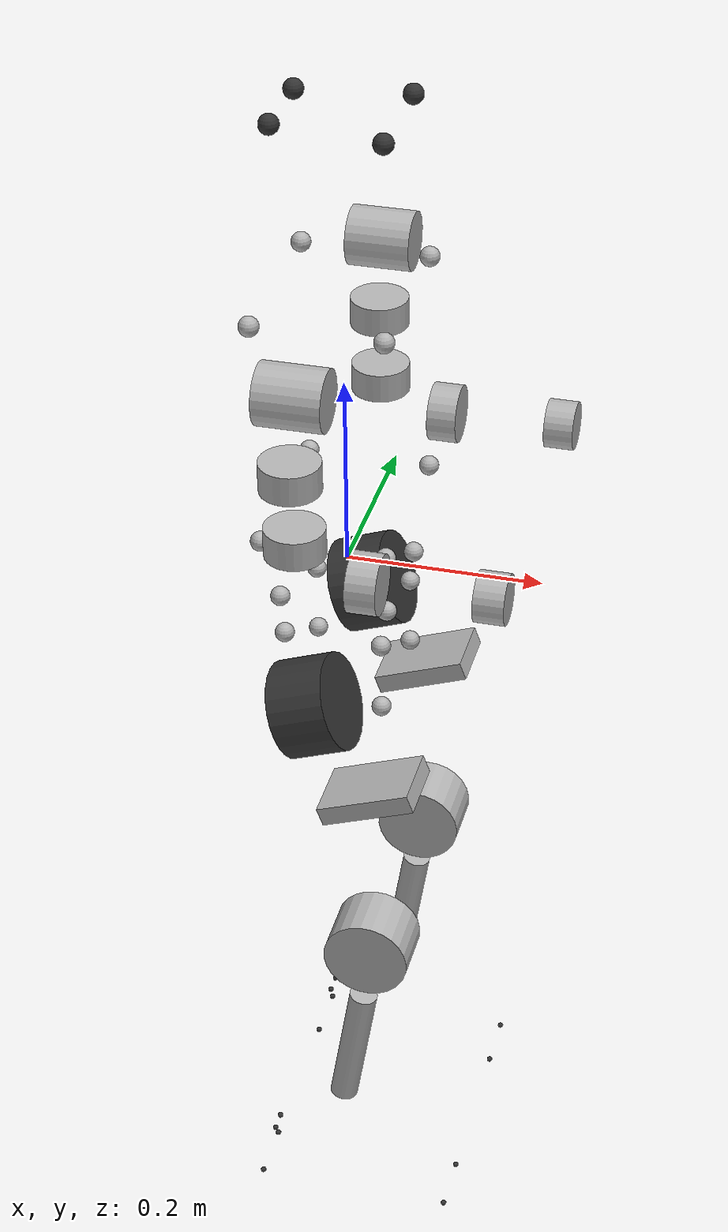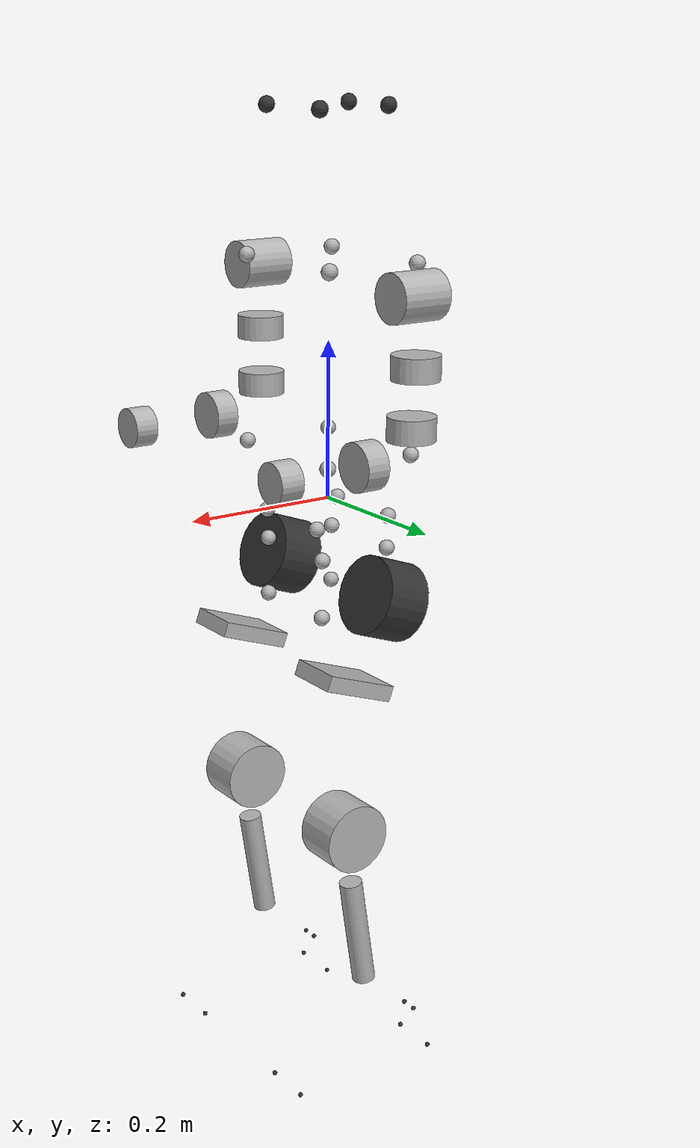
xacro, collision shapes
<?xml version="1.0"?>

<robot name="g1_description" xmlns:xacro="http://www.ros.org/wiki/xacro">

  <xacro:arg name="DEBUG" default="false"/>

  <xacro:include filename="$(find g1_description)/xacro/gazebo.xacro"/>
  <xacro:include filename="$(find g1_description)/xacro/const.xacro"/>
  <xacro:include filename="$(find g1_description)/xacro/leg.xacro"/>
  <xacro:include filename="$(find g1_description)/xacro/arm.xacro"/>
  <!-- Rotor related joint and link is only for demonstrate location. -->
  <!-- Actually, the rotor will rotate and the joint is not fixed. Reduction ratio should be considered. -->

  <!-- Debug mode will hung up the robot, use "true" or "false" to switch it. -->
  <xacro:if value="$(arg DEBUG)">
      <link name="world"/>
      <joint name="base_static_joint" type="fixed">
          <origin rpy="0 0 0" xyz="0 0 0.5"/>
          <parent link="world"/>
          <child link="pelvis"/>
      </joint>
  </xacro:if>

 <!-- Torso -->
  <link name="torso_link">
    <inertial>
      <origin xyz="${torso_link_com_x} ${torso_link_com_y} ${torso_link_com_z}" rpy="0 0 0"/>
      <mass value="${torso_link_mass}"/>
      <inertia
        ixx="${torso_link_ixx}" ixy="${torso_link_ixy}" ixz="${torso_link_ixz}"
        iyy="${torso_link_iyy}" iyz="${torso_link_iyz}"
        izz="${torso_link_izz}"/>
    </inertial>
    <visual>
      <origin xyz="0 0 0" rpy="0 0 0"/>
      <geometry>
        <mesh filename="package://g1_description/meshes/torso_link.STL"/>
      </geometry>
      <material name="">
        <color rgba="0.7 0.7 0.7 1"/>
      </material>
    </visual>
    <collision>
        <origin xyz="0.055 0.055 -0.020" rpy="0 0 0"/>
        <geometry>
        <sphere radius="0.01"/>
        </geometry>
    </collision>
    <collision>
        <origin xyz="0.055 -0.055 -0.020" rpy="0 0 0"/>
        <geometry>
        <sphere radius="0.01"/>
        </geometry>
    </collision>
    <collision>
        <origin xyz="-0.055 0.055 -0.020" rpy="0 0 0"/>
        <geometry>
        <sphere radius="0.01"/>
        </geometry>
    </collision>
    <collision>
        <origin xyz="-0.055 -0.055 -0.020" rpy="0 0 0"/>
        <geometry>
        <sphere radius="0.01"/>
        </geometry>
    </collision>

    <collision>
        <origin xyz="0.063 0.088 0.065" rpy="0 0 0"/>
        <geometry>
        <sphere radius="0.01"/>
        </geometry>
    </collision>
    <collision>
        <origin xyz="0.063 -0.088 0.065" rpy="0 0 0"/>
        <geometry>
        <sphere radius="0.01"/>
        </geometry>
    </collision>
    <collision>
        <origin xyz="-0.063 0.088 0.065" rpy="0 0 0"/>
        <geometry>
        <sphere radius="0.01"/>
        </geometry>
    </collision>
    <collision>
        <origin xyz="-0.063 -0.088 0.065" rpy="0 0 0"/>
        <geometry>
        <sphere radius="0.01"/>
        </geometry>
    </collision>

    <collision>
        <origin xyz="0.063 0.088 0.30" rpy="0 0 0"/>
        <geometry>
        <sphere radius="0.01"/>
        </geometry>
    </collision>
    <collision>
        <origin xyz="0.063 -0.088 0.30" rpy="0 0 0"/>
        <geometry>
        <sphere radius="0.01"/>
        </geometry>
    </collision>
    <collision>
        <origin xyz="-0.066 0.088 0.30" rpy="0 0 0"/>
        <geometry>
        <sphere radius="0.01"/>
        </geometry>
    </collision>
    <collision>
        <origin xyz="-0.066 -0.088 0.30" rpy="0 0 0"/>
        <geometry>
        <sphere radius="0.01"/>
        </geometry>
    </collision>
  </link>

  <joint name="torso_joint" type="revolute">
    <origin xyz="${torso_joint_offset_x} ${torso_joint_offset_y} ${torso_joint_offset_z}" rpy="0 0 0"/>
    <parent link="pelvis"/>
    <child link="torso_link"/>
    <axis xyz="0 0 1"/>
    <limit lower="${torso_joint_position_min}" upper="${torso_joint_position_max}" effort="${torso_joint_torque_max}" velocity="${torso_joint_velocity_max}"/>
  </joint>

  <link name="pelvis">
    <inertial>
      <origin xyz="0 0 -0.07605" rpy="0 0 0"/>
      <mass value="2.86"/>
      <inertia ixx="0.0079143" ixy="0" ixz="1.6E-06" iyy="0.0069837" iyz="0" izz="0.0059404"/>
    </inertial>
    <visual>
      <origin xyz="0 0 0" rpy="0 0 0"/>
      <geometry>
        <mesh filename="package://g1_description/meshes/pelvis.STL"/>
      </geometry>
      <material name="">
        <color rgba="0.7 0.7 0.7 1"/>
      </material>
    </visual>
    <collision>
        <origin xyz="0.050 0.060 -0.060" rpy="0 0 0"/>
        <geometry>
        <sphere radius="0.01"/>
        </geometry>
    </collision>
    <collision>
        <origin xyz="0.050 -0.060 -0.060" rpy="0 0 0"/>
        <geometry>
        <sphere radius="0.01"/>
        </geometry>
    </collision>
    <collision>
        <origin xyz="-0.050 0.060 -0.060" rpy="0 0 0"/>
        <geometry>
        <sphere radius="0.01"/>
        </geometry>
    </collision>
    <collision>
        <origin xyz="-0.050 -0.060 -0.060" rpy="0 0 0"/>
        <geometry>
        <sphere radius="0.01"/>
        </geometry>
    </collision>

    <collision>
        <origin xyz="0.050 0.060 -0.135" rpy="0 0 0"/>
        <geometry>
        <sphere radius="0.01"/>
        </geometry>
    </collision>
    <collision>
        <origin xyz="0.050 -0.060 -0.135" rpy="0 0 0"/>
        <geometry>
        <sphere radius="0.01"/>
        </geometry>
    </collision>
    <collision>
        <origin xyz="-0.050 0.060 -0.135" rpy="0 0 0"/>
        <geometry>
        <sphere radius="0.01"/>
        </geometry>
    </collision>
    <collision>
        <origin xyz="-0.050 -0.060 -0.135" rpy="0 0 0"/>
        <geometry>
        <sphere radius="0.01"/>
        </geometry>
    </collision>
  </link>
  <link name="pelvis_contour_link">
    <visual>
      <origin xyz="0 0 0" rpy="0 0 0"/>
      <geometry>
        <mesh filename="package://g1_description/meshes/pelvis_contour_link.STL"/>
      </geometry>
      <material name="">
        <color rgba="0.2 0.2 0.2 1"/>
      </material>
    </visual>
  </link>
  <joint name="pelvis_contour_joint" type="fixed">
    <parent link="pelvis"/>
    <child link="pelvis_contour_link"/>
  </joint>

 <!-- Head -->
  <link name="head_link">
    <inertial>
      <origin xyz="0.00138066852 0.00028430950 0.42034187824" rpy="0 0 0"/>
      <mass value="1.17976522"/>
      <inertia ixx="0.00543236042361" ixy="0.00000140137425" ixz="0.00034554752228" iyy="0.00552885306699" iyz="0.00001501216392" izz="0.00165378108136"/>
    </inertial>
    <visual>
      <origin xyz="0 0 0" rpy="0 0 0"/>
      <geometry>
        <mesh filename="package://g1_description/meshes/head_link.STL"/>
      </geometry>
      <material name="">
        <color rgba="0.2 0.2 0.2 1"/>
      </material>
    </visual>
    <collision>
      <origin xyz="0.055 0.055 0.48" rpy="0 0 0"/>
      <geometry>
      <sphere radius="0.01"/>
      </geometry>
    </collision>
    <collision>
      <origin xyz="0.055 -0.055 0.48" rpy="0 0 0"/>
      <geometry>
      <sphere radius="0.01"/>
      </geometry>
    </collision>
    <collision>
      <origin xyz="-0.055 0.040 0.48" rpy="0 0 0"/>
      <geometry>
      <sphere radius="0.01"/>
      </geometry>
    </collision>
    <collision>
      <origin xyz="-0.055 -0.040 0.48" rpy="0 0 0"/>
      <geometry>
      <sphere radius="0.01"/>
      </geometry>
    </collision>
  </link>

  <joint name="head_joint" type="fixed">
    <origin xyz="0 0 0" rpy="0 0 0"/>
    <parent link="torso_link"/>
    <child link="head_link"/>
  </joint>

  <!-- IMU -->
  <link name="imu_link"></link>

  <joint name="imu_joint" type="fixed">
    <origin xyz="-0.04233868314 0.00166 0.152067" rpy="0 0 0"/>
    <parent link="torso_link"/>
    <child link="imu_link"/>
  </joint>

  <xacro:leg name="left" mirror="1"/>
  <xacro:leg name="right" mirror="-1"/>
  <xacro:arm name="left" mirror="1"/>
  <xacro:arm name="right" mirror="-1"/>

  <transmission name="torso_tran">
    <type>transmission_interface/SimpleTransmission</type>
    <joint name="torso_joint">
      <hardwareInterface>hardware_interface/EffortJointInterface</hardwareInterface>
    </joint>
    <actuator name="torso_motor">
      <hardwareInterface>hardware_interface/EffortJointInterface</hardwareInterface>
      <mechanicalReduction>1</mechanicalReduction>
    </actuator>
  </transmission>

</robot>

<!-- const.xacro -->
<robot xmlns:xacro="http://www.ros.org/wiki/xacro">

    <!-- Constants for robot dimensions -->
    <xacro:property name="PI" value="3.1415926535897931"/>
    <xacro:property name="stick_mass" value="0.00001"/>

    <!-- dynamics inertial value-->
    <!-- All the value listed here is based on the left side, and the right side only differs in certain aspects. You can check these based on the g1.urdf file.-->
    <!-- torso_link -->
        <!-- joint -->
        <xacro:property name="torso_joint_offset_x" value="0.0"/>
        <xacro:property name="torso_joint_offset_y" value="0.0"/>
        <xacro:property name="torso_joint_offset_z" value="0.0"/>
        <!-- joint limits -->
        <xacro:property name="torso_joint_position_min" value="-2.618"/>
        <xacro:property name="torso_joint_position_max" value="2.618"/>
        <xacro:property name="torso_joint_torque_max" value="88"/>
        <xacro:property name="torso_joint_velocity_max" value="32"/>
        <!-- link -->
        <xacro:property name="torso_link_com_x" value="0.00197122283"/>
        <xacro:property name="torso_link_com_y" value="0.00266902037"/>
        <xacro:property name="torso_link_com_z" value="0.16936510960"/>
        <xacro:property name="torso_link_mass" value="6.33959811"/>
        <xacro:property name="torso_link_ixx" value="0.06037082109027"/>
        <xacro:property name="torso_link_ixy" value="-0.00010168407055"/>
        <xacro:property name="torso_link_ixz" value="0.00069845018092"/>
        <xacro:property name="torso_link_iyy" value="0.04355153796551"/>
        <xacro:property name="torso_link_iyz" value="0.00034366422728"/>
        <xacro:property name="torso_link_izz" value="0.03339981866010"/>

    <!-- leg -->
        <!-- hip_pitch_link -->
        <!-- joint -->
        <xacro:property name="hip_pitch_joint_offset_x" value="0"/>
        <xacro:property name="hip_pitch_joint_offset_y" value="0.06445"/>
        <xacro:property name="hip_pitch_joint_offset_z" value="-0.1027"/>
        <xacro:property name="hip_pitch_joint_offset_pitch" value="-0.34907"/>
        <!-- joint limits -->
        <xacro:property name="hip_pitch_joint_position_min" value="-2.35"/>
        <xacro:property name="hip_pitch_joint_position_max" value="3.05"/>
        <xacro:property name="hip_pitch_joint_torque_max" value="88"/>
        <xacro:property name="hip_pitch_joint_velocity_max" value="32"/>
        <!-- link -->
        <xacro:property name="hip_pitch_link_com_x" value="0.001962"/>
        <xacro:property name="hip_pitch_link_com_y" value="0.049392"/>
        <xacro:property name="hip_pitch_link_com_z" value="-0.000941"/>
        <xacro:property name="hip_pitch_link_mass" value="1.299"/>
        <xacro:property name="hip_pitch_link_ixx" value="0.0013873"/>
        <xacro:property name="hip_pitch_link_ixy" value="-1.63E-05"/>
        <xacro:property name="hip_pitch_link_ixz" value="-1E-06"/>
        <xacro:property name="hip_pitch_link_iyy" value="0.0009059"/>
        <xacro:property name="hip_pitch_link_iyz" value="-4.24E-05"/>
        <xacro:property name="hip_pitch_link_izz" value="0.0009196"/>

        <!-- hip_roll_link -->
        <!-- joint -->
        <xacro:property name="hip_roll_joint_offset_x" value="0"/>
        <xacro:property name="hip_roll_joint_offset_y" value="0.0523"/>
        <xacro:property name="hip_roll_joint_offset_z" value="0"/>
        <!-- joint limits -->
        <xacro:property name="hip_roll_joint_position_min" value="-0.26"/>
        <xacro:property name="hip_roll_joint_position_max" value="2.53"/>
        <xacro:property name="hip_roll_joint_torque_max" value="88"/>
        <xacro:property name="hip_roll_joint_velocity_max" value="32"/>
        <!-- link -->
        <xacro:property name="hip_roll_link_com_x" value="0.024757"/>
        <xacro:property name="hip_roll_link_com_y" value="-0.001036"/>
        <xacro:property name="hip_roll_link_com_z" value="-0.086323"/>
        <xacro:property name="hip_roll_link_mass" value="1.446"/>
        <xacro:property name="hip_roll_link_ixx" value="0.0022702"/>
        <xacro:property name="hip_roll_link_ixy" value="-3.7E-06"/>
        <xacro:property name="hip_roll_link_ixz" value="-0.0003789"/>
        <xacro:property name="hip_roll_link_iyy" value="0.002304"/>
        <xacro:property name="hip_roll_link_iyz" value="-1.8E-05"/>
        <xacro:property name="hip_roll_link_izz" value="0.0016001"/>

        <!-- hip_yaw_link -->
        <!-- joint -->
        <xacro:property name="hip_yaw_joint_offset_x" value="0.01966"/>
        <xacro:property name="hip_yaw_joint_offset_y" value="-0.0012139"/>
        <xacro:property name="hip_yaw_joint_offset_z" value="-0.1241"/>
        <!-- joint limits -->
        <xacro:property name="hip_yaw_joint_position_min" value="-2.75"/>
        <xacro:property name="hip_yaw_joint_position_max" value="2.75"/>
        <xacro:property name="hip_yaw_joint_torque_max" value="88"/>
        <xacro:property name="hip_yaw_joint_velocity_max" value="32"/>
        <!-- link -->
        <xacro:property name="hip_yaw_link_com_x" value="-0.053554"/>
        <xacro:property name="hip_yaw_link_com_y" value="-0.011477"/>
        <xacro:property name="hip_yaw_link_com_z" value="-0.14067"/>
        <xacro:property name="hip_yaw_link_mass" value="2.052"/>
        <xacro:property name="hip_yaw_link_ixx" value="0.0087264"/>
        <xacro:property name="hip_yaw_link_ixy" value="-0.0004402"/>
        <xacro:property name="hip_yaw_link_ixz" value="-0.0036676"/>
        <xacro:property name="hip_yaw_link_iyy" value="0.011374"/>
        <xacro:property name="hip_yaw_link_iyz" value="-0.0006654"/>
        <xacro:property name="hip_yaw_link_izz" value="0.004279"/>

        <!-- knee_link -->
        <!-- joint -->
        <xacro:property name="knee_joint_offset_x" value="-0.078292"/>
        <xacro:property name="knee_joint_offset_y" value="-0.0017335"/>
        <xacro:property name="knee_joint_offset_z" value="-0.177225"/>
        <xacro:property name="knee_joint_offset_pitch" value="0.5096"/>
        <!-- joint limits -->
        <xacro:property name="knee_joint_position_min" value="-0.33489"/>
        <xacro:property name="knee_joint_position_max" value="2.5449"/>
        <xacro:property name="knee_joint_torque_max" value="139"/>
        <xacro:property name="knee_joint_velocity_max" value="20"/>
        <!-- link -->
        <xacro:property name="knee_link_com_x" value="0.005505"/>
        <xacro:property name="knee_link_com_y" value="0.006534"/>
        <xacro:property name="knee_link_com_z" value="-0.116629"/>
        <xacro:property name="knee_link_mass" value="2.252"/>
        <xacro:property name="knee_link_ixx" value="0.012443837"/>
        <xacro:property name="knee_link_ixy" value="0.000053496"/>
        <xacro:property name="knee_link_ixz" value="-0.000437641"/>
        <xacro:property name="knee_link_iyy" value="0.012674902"/>
        <xacro:property name="knee_link_iyz" value="-0.000682499"/>
        <xacro:property name="knee_link_izz" value="0.001986501"/>

        <!-- ankle_pitch_link -->
        <!-- joint -->
        <xacro:property name="ankle_pitch_joint_offset_x" value="0"/>
        <xacro:property name="ankle_pitch_joint_offset_y" value="0.0040687"/>
        <xacro:property name="ankle_pitch_joint_offset_z" value="-0.30007"/>
        <xacro:property name="ankle_pitch_joint_offset_pitch" value="-0.16053"/>
        <!-- joint limits -->
        <xacro:property name="ankle_pitch_joint_position_min" value="-0.68"/>
        <xacro:property name="ankle_pitch_joint_position_max" value="0.73"/>
        <xacro:property name="ankle_pitch_joint_torque_max" value="40"/>
        <xacro:property name="ankle_pitch_joint_velocity_max" value="53"/>
        <!-- link -->
        <xacro:property name="ankle_pitch_link_com_x" value="-0.007269"/>
        <xacro:property name="ankle_pitch_link_com_y" value="0"/>
        <xacro:property name="ankle_pitch_link_com_z" value="0.011137"/>
        <xacro:property name="ankle_pitch_link_mass" value="0.074"/>
        <xacro:property name="ankle_pitch_link_ixx" value="8.4E-06"/>
        <xacro:property name="ankle_pitch_link_ixy" value="0"/>
        <xacro:property name="ankle_pitch_link_ixz" value="-2.9E-06"/>
        <xacro:property name="ankle_pitch_link_iyy" value="1.89E-05"/>
        <xacro:property name="ankle_pitch_link_iyz" value="0"/>
        <xacro:property name="ankle_pitch_link_izz" value="1.26E-05"/>

        <!-- ankle_roll_link -->
        <!-- joint -->
        <xacro:property name="ankle_roll_joint_offset_x" value="0"/>
        <xacro:property name="ankle_roll_joint_offset_y" value="0"/>
        <xacro:property name="ankle_roll_joint_offset_z" value="-0.017558"/>
        <!-- joint limits -->
        <xacro:property name="ankle_roll_joint_position_max" value="0.2618"/>
        <xacro:property name="ankle_roll_joint_position_min" value="-0.2618"/>
        <xacro:property name="ankle_roll_joint_velocity_max" value="53"/>
        <xacro:property name="ankle_roll_joint_torque_max" value="40"/>
        <!-- link -->
        <xacro:property name="ankle_roll_link_com_x" value="0.024762"/>
        <xacro:property name="ankle_roll_link_com_y" value="2E-05"/>
        <xacro:property name="ankle_roll_link_com_z" value="-0.012526"/>
        <xacro:property name="ankle_roll_link_mass" value="0.391"/>
        <xacro:property name="ankle_roll_link_ixx" value="0.0001552"/>
        <xacro:property name="ankle_roll_link_ixy" value="-1E-07"/>
        <xacro:property name="ankle_roll_link_ixz" value="7.51E-05"/>
        <xacro:property name="ankle_roll_link_iyy" value="0.0010657"/>
        <xacro:property name="ankle_roll_link_iyz" value="1E-07"/>
        <xacro:property name="ankle_roll_link_izz" value="0.001098"/>

    <!-- arm -->
        <!-- shoulder_pitch_link -->
        <!-- joint -->
        <xacro:property name="shoulder_pitch_joint_offset_x" value="-0.0025"/>
        <xacro:property name="shoulder_pitch_joint_offset_y" value="0.10396"/>
        <xacro:property name="shoulder_pitch_joint_offset_z" value="0.25928"/>
        <xacro:property name="shoulder_pitch_joint_offset_roll" value="0.27925"/>
        <!-- joint limits -->
        <xacro:property name="shoulder_pitch_joint_position_min" value="-2.9671"/>
        <xacro:property name="shoulder_pitch_joint_position_max" value="2.7925"/>
        <xacro:property name="shoulder_pitch_joint_torque_max" value="21"/>
        <xacro:property name="shoulder_pitch_joint_velocity_max" value="53"/>
        <!-- link -->
        <xacro:property name="shoulder_pitch_link_com_x" value="-0.001431"/>
        <xacro:property name="shoulder_pitch_link_com_y" value="0.048811"/>
        <xacro:property name="shoulder_pitch_link_com_z" value="0.001304"/>
        <xacro:property name="shoulder_pitch_link_mass" value="0.713"/>
        <xacro:property name="shoulder_pitch_link_ixx" value="0.0004614"/>
        <xacro:property name="shoulder_pitch_link_ixy" value="-9.3E-06"/>
        <xacro:property name="shoulder_pitch_link_ixz" value="1E-05"/>
        <xacro:property name="shoulder_pitch_link_iyy" value="0.0004146"/>
        <xacro:property name="shoulder_pitch_link_iyz" value="5.5E-06"/>
        <xacro:property name="shoulder_pitch_link_izz" value="0.0004416"/>

        <!-- shoulder_roll_link -->
        <!-- joint -->
        <xacro:property name="shoulder_roll_joint_offset_x" value="0"/>
        <xacro:property name="shoulder_roll_joint_offset_y" value="0.052"/>
        <xacro:property name="shoulder_roll_joint_offset_z" value="0"/>
        <xacro:property name="shoulder_roll_joint_offset_roll" value="-0.27925"/>
        <!-- joint limits -->
        <xacro:property name="shoulder_roll_joint_position_min" value="-1.5882"/>
        <xacro:property name="shoulder_roll_joint_position_max" value="2.2515"/>
        <xacro:property name="shoulder_roll_joint_torque_max" value="21"/>
        <xacro:property name="shoulder_roll_joint_velocity_max" value="53"/>
        <!-- link -->
        <xacro:property name="shoulder_roll_link_com_x" value="-0.003415"/>
        <xacro:property name="shoulder_roll_link_com_y" value="0.006955"/>
        <xacro:property name="shoulder_roll_link_com_z" value="-0.064598"/>
        <xacro:property name="shoulder_roll_link_mass" value="0.642"/>
        <xacro:property name="shoulder_roll_link_ixx" value="0.0006159"/>
        <xacro:property name="shoulder_roll_link_ixy" value="0"/>
        <xacro:property name="shoulder_roll_link_ixz" value="-5.6E-06"/>
        <xacro:property name="shoulder_roll_link_iyy" value="0.0006835"/>
        <xacro:property name="shoulder_roll_link_iyz" value="2.1E-06"/>
        <xacro:property name="shoulder_roll_link_izz" value="0.000373"/>

        <!-- shoulder_yaw_link -->
        <!-- joint -->
        <xacro:property name="shoulder_yaw_joint_offset_x" value="-0.00354"/>
        <xacro:property name="shoulder_yaw_joint_offset_y" value="0.0062424"/>
        <xacro:property name="shoulder_yaw_joint_offset_z" value="-0.1032"/>
        <!-- joint limits -->
        <xacro:property name="shoulder_yaw_joint_position_min" value="-2.618"/>
        <xacro:property name="shoulder_yaw_joint_position_max" value="2.618"/>
        <xacro:property name="shoulder_yaw_joint_torque_max" value="21"/>
        <xacro:property name="shoulder_yaw_joint_velocity_max" value="53"/>
        <!-- link -->
        <xacro:property name="shoulder_yaw_link_com_x" value="0.000375"/>
        <xacro:property name="shoulder_yaw_link_com_y" value="-0.00444"/>
        <xacro:property name="shoulder_yaw_link_com_z" value="-0.072374"/>
        <xacro:property name="shoulder_yaw_link_mass" value="0.713"/>
        <xacro:property name="shoulder_yaw_link_ixx" value="0.0009699"/>
        <xacro:property name="shoulder_yaw_link_ixy" value="7.1E-06"/>
        <xacro:property name="shoulder_yaw_link_ixz" value="7.8E-06"/>
        <xacro:property name="shoulder_yaw_link_iyy" value="0.0009691"/>
        <xacro:property name="shoulder_yaw_link_iyz" value="-4.49E-05"/>
        <xacro:property name="shoulder_yaw_link_izz" value="0.0003826"/>

        <!-- elbow_pitch_link -->
        <!-- joint -->
        <xacro:property name="elbow_pitch_joint_offset_x" value="0"/>
        <xacro:property name="elbow_pitch_joint_offset_y" value="0.00189"/>
        <xacro:property name="elbow_pitch_joint_offset_z" value="-0.0855"/>
        <!-- joint limits -->
        <xacro:property name="elbow_pitch_joint_position_min" value="-0.2268"/>
        <xacro:property name="elbow_pitch_joint_position_max" value="3.4208"/>
        <xacro:property name="elbow_pitch_joint_torque_max" value="21"/>
        <xacro:property name="elbow_pitch_joint_velocity_max" value="53"/>
        <!-- link -->
        <xacro:property name="elbow_pitch_link_com_x" value="0.064497"/>
        <xacro:property name="elbow_pitch_link_com_y" value="0.002873"/>
        <xacro:property name="elbow_pitch_link_com_z" value="0"/>
        <xacro:property name="elbow_pitch_link_mass" value="0.601"/>
        <xacro:property name="elbow_pitch_link_ixx" value="0.0002845"/>
        <xacro:property name="elbow_pitch_link_ixy" value="8.06E-05"/>
        <xacro:property name="elbow_pitch_link_ixz" value="9E-09"/>
        <xacro:property name="elbow_pitch_link_iyy" value="0.0004647"/>
        <xacro:property name="elbow_pitch_link_iyz" value="5E-09"/>
        <xacro:property name="elbow_pitch_link_izz" value="0.0004712"/>

        <!-- elbow_roll_link -->
        <!-- joint -->
        <xacro:property name="elbow_roll_joint_offset_x" value="0.1"/>
        <xacro:property name="elbow_roll_joint_offset_y" value="0"/>
        <xacro:property name="elbow_roll_joint_offset_z" value="0"/>
        <!-- joint limits -->
        <xacro:property name="elbow_roll_joint_position_min" value="-2.0943"/>
        <xacro:property name="elbow_roll_joint_position_max" value="2.0943"/>
        <xacro:property name="elbow_roll_joint_torque_max" value="21"/>
        <xacro:property name="elbow_roll_joint_velocity_max" value="53"/>
        <!-- link -->
        <xacro:property name="elbow_roll_link_com_x" value="0.081811"/>
        <xacro:property name="elbow_roll_link_com_y" value="0.001454"/>
        <xacro:property name="elbow_roll_link_com_z" value="0.001"/>
        <xacro:property name="elbow_roll_link_mass" value="0.227"/>
        <xacro:property name="elbow_roll_link_ixx" value="0.0001093"/>
        <xacro:property name="elbow_roll_link_ixy" value="-1.55E-05"/>
        <xacro:property name="elbow_roll_link_ixz" value="-2.91E-05"/>
        <xacro:property name="elbow_roll_link_iyy" value="0.000977"/>
        <xacro:property name="elbow_roll_link_iyz" value="1E-06"/>
        <xacro:property name="elbow_roll_link_izz" value="0.0009676"/>

</robot>

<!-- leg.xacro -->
<robot xmlns:xacro="http://www.ros.org/wiki/xacro">

    <xacro:include filename="$(find g1_description)/xacro/leg_transmission.xacro"/>
    <xacro:macro name="leg" params="name mirror">

        <!-- checked -->
        <joint name="${name}_hip_pitch_joint" type="revolute">
            <origin xyz="${hip_pitch_joint_offset_x} ${mirror*hip_pitch_joint_offset_y} ${hip_pitch_joint_offset_z}" rpy="0 ${hip_pitch_joint_offset_pitch} 0"/>
            <parent link="pelvis"/>
            <child link="${name}_hip_pitch_link"/>
            <axis xyz="0 1 0"/>
            <limit lower="${hip_pitch_joint_position_min}" upper="${hip_pitch_joint_position_max}" effort="${hip_pitch_joint_torque_max}" velocity="${hip_pitch_joint_velocity_max}"/>
        </joint>

        <!-- Leg -->
        <link name="${name}_hip_pitch_link">
            <inertial>
                <origin xyz="${hip_pitch_link_com_x} ${mirror*hip_pitch_link_com_y} ${hip_pitch_link_com_z}" rpy="0 0 0"/>
                <mass value="${hip_pitch_link_mass}"/>
                <inertia
                    ixx="${hip_pitch_link_ixx}" ixy="${mirror*hip_pitch_link_ixy}" ixz="${hip_pitch_link_ixz}"
                    iyy="${hip_pitch_link_iyy}" iyz="${mirror*hip_pitch_link_iyz}"
                    izz="${hip_pitch_link_izz}"/>
            </inertial>
            <visual>
                <origin xyz="0 0 0" rpy="0 0 0"/>
                <geometry>
                    <mesh filename="package://g1_description/meshes/${name}_hip_pitch_link.STL"/>
                </geometry>
                <material name="">
                    <color rgba="0.2 0.2 0.2 1"/>
                </material>
            </visual>
            <collision>
                <origin xyz="-0.005 ${mirror*0.05} 0" rpy="0 1.5707 0"/>
                <geometry>
                    <cylinder radius="0.05" length="0.06"/>
                </geometry>
            </collision>
        </link>

        <joint name="${name}_hip_roll_joint" type="revolute">
            <origin xyz="${hip_roll_joint_offset_x} ${mirror*hip_roll_joint_offset_y} ${hip_roll_joint_offset_z}" rpy="0 0 0"/>
            <parent link="${name}_hip_pitch_link"/>
            <child link="${name}_hip_roll_link"/>
            <axis xyz="1 0 0"/>
            <xacro:if value="${mirror == 1}">
                <limit lower="${hip_roll_joint_position_min}" upper="${hip_roll_joint_position_max}" effort="${hip_roll_joint_torque_max}" velocity="${hip_roll_joint_velocity_max}"/>
            </xacro:if>
            <xacro:if value="${mirror == -1}">
                <limit lower="${mirror*hip_roll_joint_position_max}" upper="${mirror*hip_roll_joint_position_min}" effort="${hip_roll_joint_torque_max}" velocity="${hip_roll_joint_velocity_max}"/>
            </xacro:if>
        </joint>

        <link name="${name}_hip_roll_link">
            <inertial>
                <origin xyz="${hip_roll_link_com_x} ${mirror*hip_roll_link_com_y} ${hip_roll_link_com_z}" rpy="0 0 0"/>
                <mass value="${hip_roll_link_mass}"/>
                <inertia
                    ixx="${hip_roll_link_ixx}" ixy="${mirror*hip_roll_link_ixy}" ixz="${hip_roll_link_ixz}"
                    iyy="${hip_roll_link_iyy}" iyz="${mirror*hip_roll_link_iyz}"
                    izz="${hip_roll_link_izz}"/>
            </inertial>
            <visual>
                <origin xyz="0 0 0" rpy="0 0 0"/>
                <geometry>
                    <mesh filename="package://g1_description/meshes/${name}_hip_roll_link.STL"/>
                </geometry>
                <material name="">
                    <color rgba="0.7 0.7 0.7 1"/>
                </material>
            </visual>
            <collision>
                <origin xyz="0.019 -0.0 -0.11" rpy="0 0 0"/>
                <geometry>
                    <box size="0.1 0.070 0.02"/>
                </geometry>
            </collision>
        </link>

        <joint name="${name}_hip_yaw_joint" type="revolute">
            <origin xyz="${hip_yaw_joint_offset_x} ${mirror*hip_yaw_joint_offset_y} ${hip_yaw_joint_offset_z}" rpy="0 0 0"/>
            <parent link="${name}_hip_roll_link"/>
            <child link="${name}_hip_yaw_link"/>
            <axis xyz="0 0 1"/>
            <limit lower="${hip_yaw_joint_position_min}" upper="${hip_yaw_joint_position_max}" effort="${hip_yaw_joint_torque_max}" velocity="${hip_yaw_joint_velocity_max}"/>
        </joint>

        <link name="${name}_hip_yaw_link">
            <inertial>
                <origin xyz="${hip_yaw_link_com_x} ${mirror*hip_yaw_link_com_y} ${hip_yaw_link_com_z}" rpy="0 0 0"/>
                <mass value="${hip_yaw_link_mass}"/>
                <inertia
                    ixx="${hip_yaw_link_ixx}" ixy="${mirror*hip_yaw_link_ixy}" ixz="${hip_yaw_link_ixz}"
                    iyy="${hip_yaw_link_iyy}" iyz="${mirror*hip_yaw_link_iyz}"
                    izz="${hip_yaw_link_izz}"/>
            </inertial>
            <visual>
                <origin xyz="0 0 0" rpy="0 0 0"/>
                <geometry>
                    <mesh filename="package://g1_description/meshes/${name}_hip_yaw_link.STL"/>
                </geometry>
                <material name="">
                    <color rgba="0.7 0.7 0.7 1"/>
                </material>
            </visual>
            <collision>
                <origin xyz="-0.075 0 -0.18" rpy="1.5707 0 0"/>
                <geometry>
                    <cylinder radius="0.045" length="0.06"/>
                </geometry>
            </collision>
        </link>

        <joint name="${name}_knee_joint" type="revolute">
            <origin xyz="${knee_joint_offset_x} ${mirror*knee_joint_offset_y} ${knee_joint_offset_z}" rpy="0 ${knee_joint_offset_pitch} 0"/>
            <parent link="${name}_hip_yaw_link"/>
            <child link="${name}_knee_link"/>
            <axis xyz="0 1 0"/>
            <limit lower="${knee_joint_position_min}" upper="${knee_joint_position_max}" effort="${knee_joint_torque_max}" velocity="${knee_joint_velocity_max}"/>
        </joint>

        <link name="${name}_knee_link">
            <inertial>
                <origin xyz="${knee_link_com_x} ${mirror*knee_link_com_y} ${knee_link_com_z}" rpy="0 0 0"/>
                <mass value="${knee_link_mass}"/>
                <inertia
                    ixx="${knee_link_ixx}" ixy="${mirror*knee_link_ixy}" ixz="${knee_link_ixz}"
                    iyy="${knee_link_iyy}" iyz="${mirror*knee_link_iyz}"
                    izz="${knee_link_izz}"/>
            </inertial>
            <visual>
                <origin xyz="0 0 0" rpy="0 0 0"/>
                <geometry>
                    <mesh filename="package://g1_description/meshes/${name}_knee_link.STL"/>
                </geometry>
                <material name="">
                    <color rgba="0.7 0.7 0.7 1"/>
                </material>
            </visual>
            <collision>
                <origin xyz="0.007 ${mirror*0.005} -0.15" rpy="0 0 0"/>
                <geometry>
                    <cylinder radius="0.015" length="0.15"/>
                </geometry>
            </collision>
        </link>

        <joint name="${name}_ankle_pitch_joint" type="revolute">
            <origin xyz="${ankle_pitch_joint_offset_x} ${mirror*ankle_pitch_joint_offset_y} ${ankle_pitch_joint_offset_z}" rpy="0 ${ankle_pitch_joint_offset_pitch} 0"/>
            <parent link="${name}_knee_link"/>
            <child link="${name}_ankle_pitch_link"/>
            <axis xyz="0 1 0"/>
            <limit lower="${ankle_pitch_joint_position_min}" upper="${ankle_pitch_joint_position_max}" effort="${ankle_pitch_joint_torque_max}" velocity="${ankle_pitch_joint_velocity_max}"/>
        </joint>

        <link name="${name}_ankle_pitch_link">
            <inertial>
                <origin xyz="${ankle_pitch_link_com_x} ${mirror*ankle_pitch_link_com_y} ${ankle_pitch_link_com_z}" rpy="0 0 0"/>
                <mass value="${ankle_pitch_link_mass}"/>
                <inertia
                    ixx="${ankle_pitch_link_ixx}" ixy="${mirror*ankle_pitch_link_ixy}" ixz="${ankle_pitch_link_ixz}"
                    iyy="${ankle_pitch_link_iyy}" iyz="${mirror*ankle_pitch_link_iyz}"
                    izz="${ankle_pitch_link_izz}"/>
            </inertial>
            <visual>
                <origin xyz="0 0 0" rpy="0 0 0"/>
                <geometry>
                <mesh filename="package://g1_description/meshes/${name}_ankle_pitch_link.STL"/>
                </geometry>
                <material name="">
                <color rgba="0.7 0.7 0.7 1"/>
                </material>
            </visual>
        </link>

        <joint name="${name}_ankle_roll_joint" type="revolute">
            <origin xyz="${ankle_roll_joint_offset_x} ${mirror*ankle_roll_joint_offset_y} ${ankle_roll_joint_offset_z}" rpy="0 0 0"/>
            <parent link="${name}_ankle_pitch_link"/>
            <child link="${name}_ankle_roll_link"/>
            <axis xyz="1 0 0"/>
            <limit lower="${ankle_roll_joint_position_min}" upper="${ankle_roll_joint_position_max}" effort="${ankle_roll_joint_torque_max}" velocity="${ankle_roll_joint_velocity_max}"/>
        </joint>

        <link name="${name}_ankle_roll_link">
            <inertial>
                <origin xyz="${ankle_roll_link_com_x} ${mirror*ankle_roll_link_com_y} ${ankle_roll_link_com_z}" rpy="0 0 0"/>
                <mass value="${ankle_roll_link_mass}"/>
                <inertia
                    ixx="${ankle_roll_link_ixx}" ixy="${mirror*ankle_roll_link_ixy}" ixz="${ankle_roll_link_ixz}"
                    iyy="${ankle_roll_link_iyy}" iyz="${mirror*ankle_roll_link_ixz}"
                    izz="${ankle_roll_link_izz}"/>
            </inertial>
            <visual>
                <origin xyz="0 0 0" rpy="0 0 0"/>
                <geometry>
                <mesh filename="package://g1_description/meshes/${name}_ankle_roll_link.STL"/>
                </geometry>
                <material name="">
                <color rgba="0.2 0.2 0.2 1"/>
                </material>
            </visual>
            <collision>
                <origin xyz="-0.07 0.03 -0.03" rpy="0 0 0"/>
                <geometry>
                    <sphere radius="0.003"/>
                </geometry>
            </collision>
            <collision>
            <origin xyz="-0.07 -0.03 -0.03" rpy="0 0 0"/>
                <geometry>
                    <sphere radius="0.003"/>
                </geometry>
            </collision>
            <collision>
                <origin xyz="0.14 0.03 -0.03" rpy="0 0 0"/>
                <geometry>
                    <sphere radius="0.003"/>
                </geometry>
            </collision>
            <collision>
                <origin xyz="0.14 -0.03 -0.03" rpy="0 0 0"/>
                <geometry>
                    <sphere radius="0.003"/>
                </geometry>
            </collision>
            <collision>
                <origin xyz="-0.060 0.010 0.020" rpy="0 0 0"/>
                <geometry>
                    <sphere radius="0.003"/>
                </geometry>
            </collision>
            <collision>
                <origin xyz="-0.060 -0.010 0.020" rpy="0 0 0"/>
                <geometry>
                    <sphere radius="0.003"/>
                </geometry>
            </collision>
        </link>

        <xacro:leg_transmission name="${name}"/>

    </xacro:macro>
</robot>

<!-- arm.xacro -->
<robot xmlns:xacro="http://www.ros.org/wiki/xacro">

    <xacro:include filename="$(find g1_description)/xacro/arm_transmission.xacro"/>

    <xacro:macro name="arm" params="name mirror">

        <joint name="${name}_shoulder_pitch_joint" type="revolute">
            <origin xyz="${shoulder_pitch_joint_offset_x} ${mirror*shoulder_pitch_joint_offset_y} ${shoulder_pitch_joint_offset_z}" rpy="${mirror*shoulder_pitch_joint_offset_roll} 0 0"/>
            <parent link="torso_link"/>
            <child link="${name}_shoulder_pitch_link"/>
            <axis xyz="0 1 0"/>
            <limit lower="${shoulder_pitch_joint_position_min}" upper="${shoulder_pitch_joint_position_max}" effort="${shoulder_pitch_joint_torque_max}" velocity="${shoulder_pitch_joint_velocity_max}"/>
        </joint>

        <link name="${name}_shoulder_pitch_link">
            <inertial>
                <origin xyz="${shoulder_pitch_link_com_x} ${mirror*shoulder_pitch_link_com_y} ${shoulder_pitch_link_com_z}" rpy="0 0 0"/>
                <mass value="${shoulder_pitch_link_mass}"/>
                <inertia
                    ixx="${shoulder_pitch_link_ixx}" ixy="${mirror*shoulder_pitch_link_ixy}" ixz="${shoulder_pitch_link_ixz}"
                    iyy="${shoulder_pitch_link_iyy}" iyz="${mirror*shoulder_pitch_link_iyz}"
                    izz="${shoulder_pitch_link_izz}"/>
            </inertial>
            <visual>
                <origin xyz="0 0 0" rpy="0 0 0"/>
                <geometry>
                    <mesh filename="package://g1_description/meshes/${name}_shoulder_pitch_link.STL"/>
                </geometry>
                <material name="">
                    <color rgba="0.7 0.7 0.7 1"/>
                </material>
            </visual>
            <collision>
                <origin xyz="0 ${mirror*0.06} 0" rpy="0 1.5707 0"/>
                <geometry>
                    <cylinder radius="0.03" length="0.065"/>
                </geometry>
            </collision>
        </link>

        <joint name="${name}_shoulder_roll_joint" type="revolute">
            <origin xyz="${shoulder_roll_joint_offset_x} ${mirror*shoulder_roll_joint_offset_y} ${shoulder_roll_joint_offset_z}" rpy="${mirror*shoulder_roll_joint_offset_roll} 0 0"/>
            <parent link="${name}_shoulder_pitch_link"/>
            <child link="${name}_shoulder_roll_link"/>
            <axis xyz="1 0 0"/>
            <limit lower="${shoulder_roll_joint_position_min}" upper="${shoulder_roll_joint_position_max}" effort="${shoulder_roll_joint_torque_max}" velocity="${shoulder_roll_joint_velocity_max}"/>
             <xacro:if value="${mirror == 1}">
                <limit lower="${shoulder_roll_joint_position_min}" upper="${shoulder_roll_joint_position_max}" effort="${shoulder_roll_joint_torque_max}" velocity="${shoulder_roll_joint_velocity_max}"/>
            </xacro:if>
            <xacro:if value="${mirror == -1}">
                <limit lower="${mirror*shoulder_roll_joint_position_max}" upper="${mirror*shoulder_roll_joint_position_min}" effort="${shoulder_roll_joint_torque_max}" velocity="${shoulder_roll_joint_velocity_max}"/>
            </xacro:if>
       </joint>

        <link name="${name}_shoulder_roll_link">
            <inertial>
                <origin xyz="${shoulder_roll_link_com_x} ${mirror*shoulder_roll_link_com_y} ${shoulder_roll_link_com_z}" rpy="0 0 0"/>
                <mass value="${shoulder_roll_link_mass}"/>
                <inertia
                    ixx="${shoulder_roll_link_ixx}" ixy="${mirror*shoulder_roll_link_ixy}" ixz="${shoulder_roll_link_ixz}"
                    iyy="${shoulder_roll_link_iyy}" iyz="${mirror*shoulder_roll_link_iyz}"
                    izz="${shoulder_roll_link_izz}"/>
            </inertial>
            <visual>
                <origin xyz="0 0 0" rpy="0 0 0"/>
                <geometry>
                    <mesh filename="package://g1_description/meshes/${name}_shoulder_roll_link.STL"/>
                </geometry>
                <material name="">
                    <color rgba="0.7 0.7 0.7 1"/>
                </material>
            </visual>
            <collision>
                <origin xyz="-0.005 ${mirror*0.01} -0.080" rpy="0 0 0"/>
                <geometry>
                    <cylinder radius="0.03" length="0.03"/>
                </geometry>
            </collision>
        </link>

        <joint name="${name}_shoulder_yaw_joint" type="revolute">
            <origin xyz="${shoulder_yaw_joint_offset_x} ${mirror*shoulder_yaw_joint_offset_y} ${shoulder_yaw_joint_offset_z}" rpy="0 0 0"/>
            <parent link="${name}_shoulder_roll_link"/>
            <child link="${name}_shoulder_yaw_link"/>
            <axis xyz="0 0 1"/>
            <limit lower="${shoulder_yaw_joint_position_min}" upper="${shoulder_yaw_joint_position_max}" effort="${shoulder_yaw_joint_torque_max}" velocity="${shoulder_yaw_joint_velocity_max}"/>
        </joint>

        <link name="${name}_shoulder_yaw_link">
            <inertial>
                <origin xyz="${shoulder_yaw_link_com_x} ${mirror*shoulder_yaw_link_com_y} ${shoulder_yaw_link_com_z}" rpy="0 0 0"/>
                <mass value="${shoulder_yaw_link_mass}"/>
                <inertia
                    ixx="${shoulder_yaw_link_ixx}" ixy="${mirror*shoulder_yaw_link_ixy}" ixz="${shoulder_yaw_link_ixz}"
                    iyy="${shoulder_yaw_link_iyy}" iyz="${mirror*shoulder_yaw_link_iyz}"
                    izz="${shoulder_yaw_link_izz}"/>
            </inertial>
            <visual>
                <origin xyz="0 0 0" rpy="0 0 0"/>
                <geometry>
                    <mesh filename="package://g1_description/meshes/${name}_shoulder_yaw_link.STL"/>
                </geometry>
                <material name="">
                    <color rgba="0.7 0.7 0.7 1"/>
                </material>
            </visual>
            <collision>
                <origin xyz="-0.0 -0.0 -0.05" rpy="0 0 0"/>
                <geometry>
                    <cylinder radius="0.03" length="0.03"/>
                </geometry>
            </collision>
        </link>

        <joint name="${name}_elbow_pitch_joint" type="revolute">
            <origin xyz="${elbow_pitch_joint_offset_x} ${mirror*elbow_pitch_joint_offset_y} ${elbow_pitch_joint_offset_z}" rpy="0 0 0"/>
            <parent link="${name}_shoulder_yaw_link"/>
            <child link="${name}_elbow_pitch_link"/>
            <axis xyz="0 1 0"/>
            <limit lower="${elbow_pitch_joint_position_min}" upper="${elbow_pitch_joint_position_max}" effort="${elbow_pitch_joint_torque_max}" velocity="${elbow_pitch_joint_velocity_max}"/>
        </joint>

        <link name="${name}_elbow_pitch_link">
            <inertial>
                <origin xyz="${elbow_pitch_link_com_x} ${mirror*elbow_pitch_link_com_y} ${elbow_pitch_link_com_z}" rpy="0 0 0"/>
                <mass value="${elbow_pitch_link_mass}"/>
                <inertia
                    ixx="${elbow_pitch_link_ixx}" ixy="${mirror*elbow_pitch_link_ixy}" ixz="${elbow_pitch_link_ixz}"
                    iyy="${elbow_pitch_link_iyy}" iyz="${mirror*elbow_pitch_link_iyz}"
                    izz="${elbow_pitch_link_izz}"/>
            </inertial>
            <visual>
                <origin xyz="0 0 0" rpy="0 0 0"/>
                <geometry>
                    <mesh filename="package://g1_description/meshes/${name}_elbow_pitch_link.STL"/>
                </geometry>
                <material name="">
                    <color rgba="0.7 0.7 0.7 1"/>
                </material>
            </visual>
            <collision>
                <origin xyz="0.07 -0.0 -0.0" rpy="0 1.5707 0"/>
                <geometry>
                    <cylinder radius="0.03" length="0.03"/>
                </geometry>
            </collision>
        </link>

        <joint name="${name}_elbow_roll_joint" type="revolute">
            <origin xyz="${elbow_roll_joint_offset_x} ${mirror*elbow_roll_joint_offset_y} ${elbow_roll_joint_offset_z}" rpy="0 0 0"/>
            <parent link="${name}_elbow_pitch_link"/>
            <child link="${name}_elbow_roll_link"/>
            <axis xyz="1 0 0"/>
            <limit lower="${elbow_roll_joint_position_min}" upper="${elbow_roll_joint_position_max}" effort="${elbow_roll_joint_torque_max}" velocity="${elbow_roll_joint_velocity_max}"/>
        </joint>

        <link name="${name}_elbow_roll_link">
            <inertial>
                <origin xyz="${elbow_roll_link_com_x} ${mirror*elbow_roll_link_com_y} ${elbow_roll_link_com_z}" rpy="0 0 0"/>
                <mass value="${elbow_roll_link_mass}"/>
                <inertia
                    ixx="${elbow_roll_link_ixx}" ixy="${mirror*elbow_roll_link_ixy}" ixz="${elbow_roll_link_ixz}"
                    iyy="${elbow_roll_link_iyy}" iyz="${mirror*elbow_roll_link_iyz}"
                    izz="${elbow_roll_link_izz}"/>
            </inertial>
            <visual>
                <origin xyz="0 0 0" rpy="0 0 0"/>
                <geometry>
                <mesh filename="package://g1_description/meshes/${name}_elbow_roll_link.STL"/>
                </geometry>
                <material name="">
                <color rgba="0.7 0.7 0.7 1"/>
                </material>
            </visual>
            <collision>
            <origin xyz="0.09 0.005 -0.0" rpy="0 1.5707 0"/>
            <geometry>
                <cylinder radius="0.025" length="0.03"/>
            </geometry>
            </collision>
        </link>

        <xacro:arm_transmission name="${name}"/>

    </xacro:macro>
</robot>
